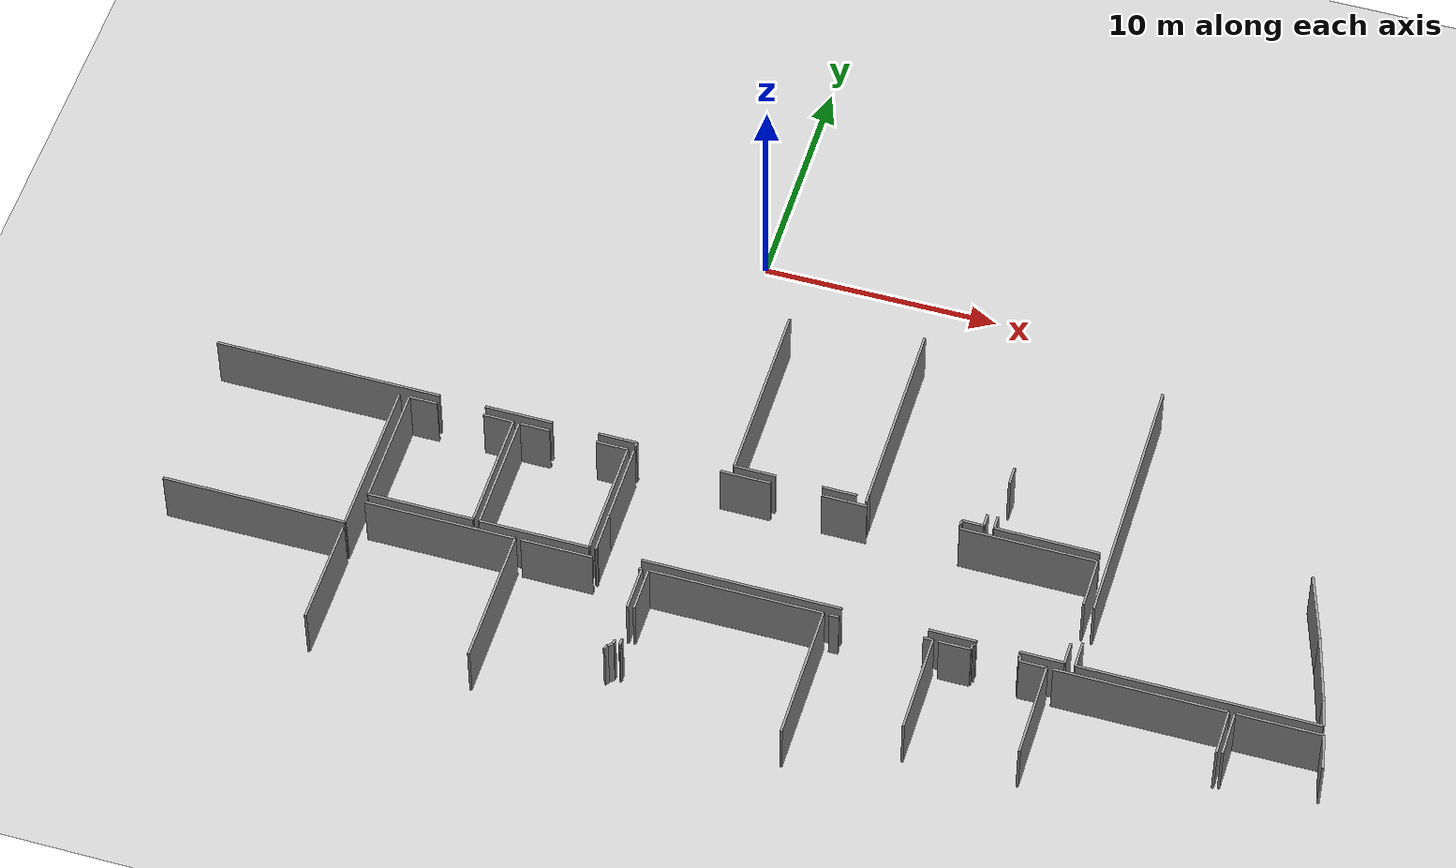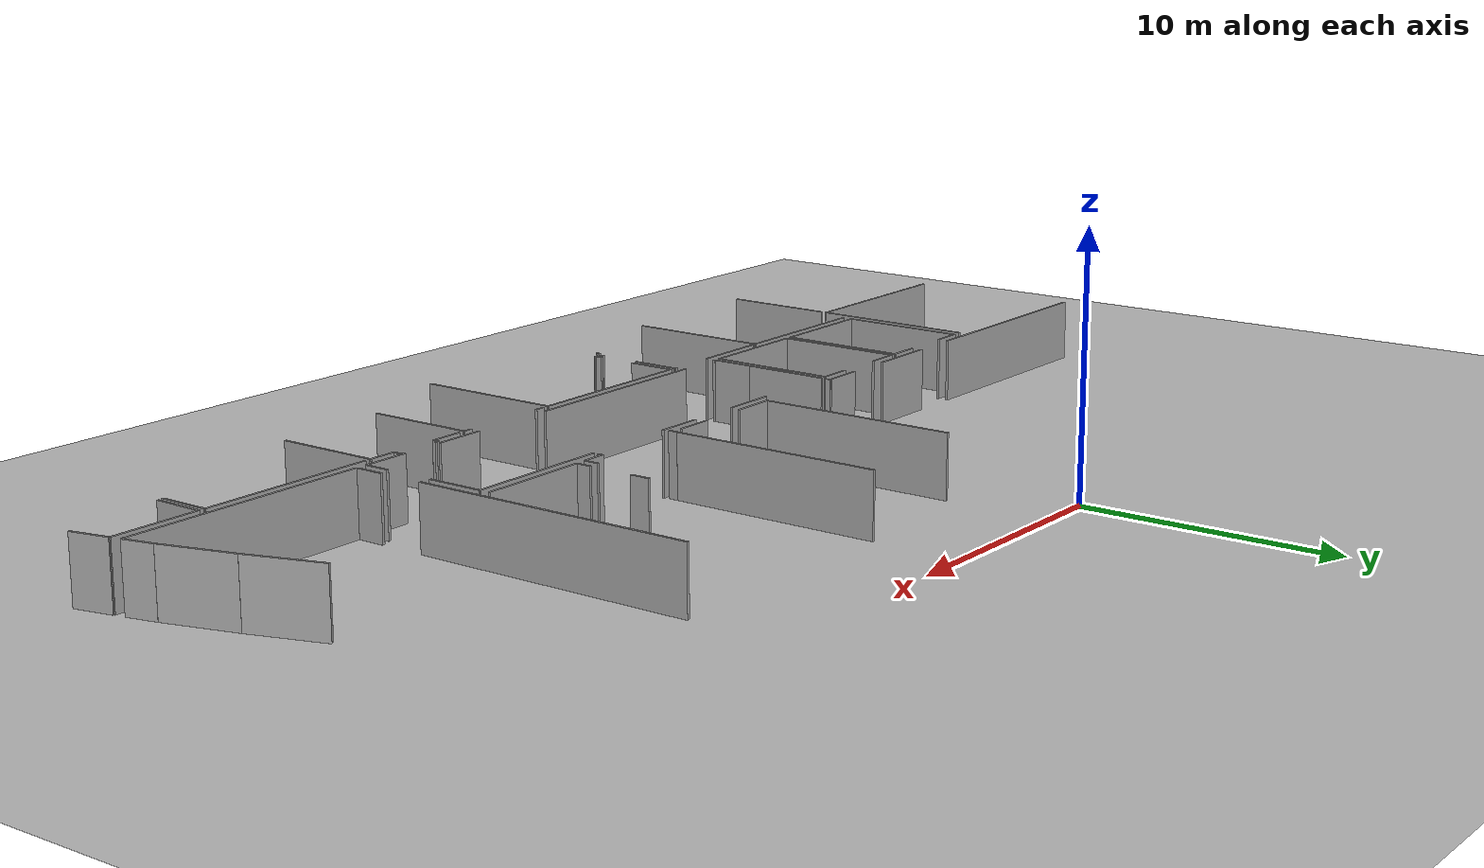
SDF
<sdf version="1.6">
 <world name="default">
  <model name="ground_plane">
   <static>1</static>
   <link name="link">
    <collision name="collision">
     <geometry><plane><normal>0 0 1</normal><size>100 100</size></plane></geometry>
     <surface><friction><ode><mu>100</mu><mu2>50</mu2></ode></friction></surface>
    </collision>
    <visual name="visual">
     <cast_shadows>0</cast_shadows>
     <geometry><plane><normal>0 0 1</normal><size>100 100</size></plane></geometry>
     <material>
      <script><uri>file://media/materials/scripts/gazebo.material</uri><name>Gazebo/Grey</name></script>
     </material>
    </visual>
   </link>
  </model>
  <model name="50041192">
   <static>1</static>
   <link name="Wall_64">
    <collision name="Wall_64_Collision">
     <geometry><box><size>0.18997877829 0.1 2.5</size></box></geometry>
     <pose>0.0949893891452 0 1.25 0 0 0</pose>
    </collision>
    <visual name="Wall_64_Visual">
     <pose>0.0949893891452 0 1.25 0 0 0</pose>
     <geometry><box><size>0.18997877829 0.1 2.5</size></box></geometry>
     <material>
      <script><uri>file://media/materials/scripts/gazebo.material</uri><name>Gazebo/Grey</name></script>
      <ambient>1 1 1 1</ambient>
     </material>
    </visual>
    <pose>27.8658838779 -46.1631784276 0 0 0 1.57079632679</pose>
   </link>
   <link name="Wall_65">
    <collision name="Wall_65_Collision">
     <geometry><box><size>1.62060157829 0.1 2.5</size></box></geometry>
     <pose>0.810300789143 0 1.25 0 0 0</pose>
    </collision>
    <visual name="Wall_65_Visual">
     <pose>0.810300789143 0 1.25 0 0 0</pose>
     <geometry><box><size>1.62060157829 0.1 2.5</size></box></geometry>
     <material>
      <script><uri>file://media/materials/scripts/gazebo.material</uri><name>Gazebo/Grey</name></script>
      <ambient>1 1 1 1</ambient>
     </material>
    </visual>
    <pose>27.8658838779 -45.9731996493 0 0 0 3.14159265359</pose>
   </link>
   <link name="Wall_66">
    <collision name="Wall_66_Collision">
     <geometry><box><size>2.86683694865 0.1 2.5</size></box></geometry>
     <pose>1.43341847432 0 1.25 0 0 0</pose>
    </collision>
    <visual name="Wall_66_Visual">
     <pose>1.43341847432 0 1.25 0 0 0</pose>
     <geometry><box><size>2.86683694865 0.1 2.5</size></box></geometry>
     <material>
      <script><uri>file://media/materials/scripts/gazebo.material</uri><name>Gazebo/Grey</name></script>
      <ambient>1 1 1 1</ambient>
     </material>
    </visual>
    <pose>24.2817023115 -45.9731996493 0 0 0 3.14159265359</pose>
   </link>
   <link name="Wall_67">
    <collision name="Wall_67_Collision">
     <geometry><box><size>9.63656233718 0.1 2.5</size></box></geometry>
     <pose>4.81828116859 0 1.25 0 0 0</pose>
    </collision>
    <visual name="Wall_67_Visual">
     <pose>4.81828116859 0 1.25 0 0 0</pose>
     <geometry><box><size>9.63656233718 0.1 2.5</size></box></geometry>
     <material>
      <script><uri>file://media/materials/scripts/gazebo.material</uri><name>Gazebo/Grey</name></script>
      <ambient>1 1 1 1</ambient>
     </material>
    </visual>
    <pose>19.4603077783 -45.9731996493 0 0 0 3.14159265359</pose>
   </link>
   <link name="Wall_108">
    <collision name="Wall_108_Collision">
     <geometry><box><size>7.90820022111 0.1 2.5</size></box></geometry>
     <pose>3.95410011056 0 1.25 0 0 0</pose>
    </collision>
    <visual name="Wall_108_Visual">
     <pose>3.95410011056 0 1.25 0 0 0</pose>
     <geometry><box><size>7.90820022111 0.1 2.5</size></box></geometry>
     <material>
      <script><uri>file://media/materials/scripts/gazebo.material</uri><name>Gazebo/Grey</name></script>
      <ambient>1 1 1 1</ambient>
     </material>
    </visual>
    <pose>31.9872161437 -45.966845844 0 0 0 1.57079632679</pose>
   </link>
   <link name="Wall_112">
    <collision name="Wall_112_Collision">
     <geometry><box><size>1.45031959641 0.1 2.5</size></box></geometry>
     <pose>0.725159798203 0 1.25 0 0 0</pose>
    </collision>
    <visual name="Wall_112_Visual">
     <pose>0.725159798203 0 1.25 0 0 0</pose>
     <geometry><box><size>1.45031959641 0.1 2.5</size></box></geometry>
     <material>
      <script><uri>file://media/materials/scripts/gazebo.material</uri><name>Gazebo/Grey</name></script>
      <ambient>1 1 1 1</ambient>
     </material>
    </visual>
    <pose>37.1369753345 -45.9664646157 0 0 0 3.14159265359</pose>
   </link>
   <link name="Wall_113">
    <collision name="Wall_113_Collision">
     <geometry><box><size>1.74920263898 0.1 2.5</size></box></geometry>
     <pose>0.874601319489 0 1.25 0 0 0</pose>
    </collision>
    <visual name="Wall_113_Visual">
     <pose>0.874601319489 0 1.25 0 0 0</pose>
     <geometry><box><size>1.74920263898 0.1 2.5</size></box></geometry>
     <material>
      <script><uri>file://media/materials/scripts/gazebo.material</uri><name>Gazebo/Grey</name></script>
      <ambient>1 1 1 1</ambient>
     </material>
    </visual>
    <pose>33.7364187412 -45.9664646157 0 0 0 -3.14137470953</pose>
   </link>
   <link name="Wall_114">
    <collision name="Wall_114_Collision">
     <geometry><box><size>8.35512688549 0.1 2.5</size></box></geometry>
     <pose>4.17756344275 0 1.25 0 0 0</pose>
    </collision>
    <visual name="Wall_114_Visual">
     <pose>4.17756344275 0 1.25 0 0 0</pose>
     <geometry><box><size>8.35512688549 0.1 2.5</size></box></geometry>
     <material>
      <script><uri>file://media/materials/scripts/gazebo.material</uri><name>Gazebo/Grey</name></script>
      <ambient>1 1 1 1</ambient>
     </material>
    </visual>
    <pose>37.5865705971 -45.7853811648 0 0 0 1.57079632679</pose>
   </link>
   <link name="Wall_122">
    <collision name="Wall_122_Collision">
     <geometry><box><size>0.576035987953 0.1 2.5</size></box></geometry>
     <pose>0.288017993977 0 1.25 0 0 0</pose>
    </collision>
    <visual name="Wall_122_Visual">
     <pose>0.288017993977 0 1.25 0 0 0</pose>
     <geometry><box><size>0.576035987953 0.1 2.5</size></box></geometry>
     <material>
      <script><uri>file://media/materials/scripts/gazebo.material</uri><name>Gazebo/Grey</name></script>
      <ambient>1 1 1 1</ambient>
     </material>
    </visual>
    <pose>42.4319825143 -45.3936055304 0 0 0 -1.57079632679</pose>
   </link>
   <link name="Wall_123">
    <collision name="Wall_123_Collision">
     <geometry><box><size>0.915202114546 0.1 2.5</size></box></geometry>
     <pose>0.457601057273 0 1.25 0 0 0</pose>
    </collision>
    <visual name="Wall_123_Visual">
     <pose>0.457601057273 0 1.25 0 0 0</pose>
     <geometry><box><size>0.915202114546 0.1 2.5</size></box></geometry>
     <material>
      <script><uri>file://media/materials/scripts/gazebo.material</uri><name>Gazebo/Grey</name></script>
      <ambient>1 1 1 1</ambient>
     </material>
    </visual>
    <pose>42.4319825143 -45.9696415183 0 0 0 3.14159265359</pose>
   </link>
   <link name="Wall_124">
    <collision name="Wall_124_Collision">
     <geometry><box><size>0.199890714549 0.1 2.5</size></box></geometry>
     <pose>0.0999453572745 0 1.25 0 0 0</pose>
    </collision>
    <visual name="Wall_124_Visual">
     <pose>0.0999453572745 0 1.25 0 0 0</pose>
     <geometry><box><size>0.199890714549 0.1 2.5</size></box></geometry>
     <material>
      <script><uri>file://media/materials/scripts/gazebo.material</uri><name>Gazebo/Grey</name></script>
      <ambient>1 1 1 1</ambient>
     </material>
    </visual>
    <pose>41.5167803998 -45.9696415183 0 0 0 -1.57079632679</pose>
   </link>
   <link name="Wall_125">
    <collision name="Wall_125_Collision">
     <geometry><box><size>0.384186398063 0.1 2.5</size></box></geometry>
     <pose>0.192093199032 0 1.25 0 0 0</pose>
    </collision>
    <visual name="Wall_125_Visual">
     <pose>0.192093199032 0 1.25 0 0 0</pose>
     <geometry><box><size>0.384186398063 0.1 2.5</size></box></geometry>
     <material>
      <script><uri>file://media/materials/scripts/gazebo.material</uri><name>Gazebo/Grey</name></script>
      <ambient>1 1 1 1</ambient>
     </material>
    </visual>
    <pose>37.5813604768 -46.1695322329 0 0 0 1.55723447223</pose>
   </link>
   <link name="Wall_128">
    <collision name="Wall_128_Collision">
     <geometry><box><size>4.37523032544 0.1 2.5</size></box></geometry>
     <pose>2.18761516272 0 1.25 0 0 0</pose>
    </collision>
    <visual name="Wall_128_Visual">
     <pose>2.18761516272 0 1.25 0 0 0</pose>
     <geometry><box><size>4.37523032544 0.1 2.5</size></box></geometry>
     <material>
      <script><uri>file://media/materials/scripts/gazebo.material</uri><name>Gazebo/Grey</name></script>
      <ambient>1 1 1 1</ambient>
     </material>
    </visual>
    <pose>47.2369842299 -45.9653209307 0 0 0 3.14159265359</pose>
   </link>
   <link name="Wall_129">
    <collision name="Wall_129_Collision">
     <geometry><box><size>0.598274306482 0.1 2.5</size></box></geometry>
     <pose>0.299137153241 0 1.25 0 0 0</pose>
    </collision>
    <visual name="Wall_129_Visual">
     <pose>0.299137153241 0 1.25 0 0 0</pose>
     <geometry><box><size>0.598274306482 0.1 2.5</size></box></geometry>
     <material>
      <script><uri>file://media/materials/scripts/gazebo.material</uri><name>Gazebo/Grey</name></script>
      <ambient>1 1 1 1</ambient>
     </material>
    </visual>
    <pose>42.8617539044 -45.9653209307 0 0 0 1.57079632679</pose>
   </link>
   <link name="Wall_130">
    <collision name="Wall_130_Collision">
     <geometry><box><size>0.784313735785 0.1 2.5</size></box></geometry>
     <pose>0.392156867892 0 1.25 0 0 0</pose>
    </collision>
    <visual name="Wall_130_Visual">
     <pose>0.392156867892 0 1.25 0 0 0</pose>
     <geometry><box><size>0.784313735785 0.1 2.5</size></box></geometry>
     <material>
      <script><uri>file://media/materials/scripts/gazebo.material</uri><name>Gazebo/Grey</name></script>
      <ambient>1 1 1 1</ambient>
     </material>
    </visual>
    <pose>42.8617539044 -43.6179711029 0 0 0 1.57095834883</pose>
   </link>
   <link name="Wall_133">
    <collision name="Wall_133_Collision">
     <geometry><box><size>3.01227094083 0.1 2.5</size></box></geometry>
     <pose>1.50613547041 0 1.25 0 0 0</pose>
    </collision>
    <visual name="Wall_133_Visual">
     <pose>1.50613547041 0 1.25 0 0 0</pose>
     <geometry><box><size>3.01227094083 0.1 2.5</size></box></geometry>
     <material>
      <script><uri>file://media/materials/scripts/gazebo.material</uri><name>Gazebo/Grey</name></script>
      <ambient>1 1 1 1</ambient>
     </material>
    </visual>
    <pose>55.6410354161 -44.667111433 0 0 0 -1.25064662482</pose>
   </link>
   <link name="Wall_134">
    <collision name="Wall_134_Collision">
     <geometry><box><size>2.93746454916 0.1 2.5</size></box></geometry>
     <pose>1.46873227458 0 1.25 0 0 0</pose>
    </collision>
    <visual name="Wall_134_Visual">
     <pose>1.46873227458 0 1.25 0 0 0</pose>
     <geometry><box><size>2.93746454916 0.1 2.5</size></box></geometry>
     <material>
      <script><uri>file://media/materials/scripts/gazebo.material</uri><name>Gazebo/Grey</name></script>
      <ambient>1 1 1 1</ambient>
     </material>
    </visual>
    <pose>56.589023166 -47.5263238153 0 0 0 -1.29008409856</pose>
   </link>
   <link name="Wall_135">
    <collision name="Wall_135_Collision">
     <geometry><box><size>1.22493164507 0.1 2.5</size></box></geometry>
     <pose>0.612465822537 0 1.25 0 0 0</pose>
    </collision>
    <visual name="Wall_135_Visual">
     <pose>0.612465822537 0 1.25 0 0 0</pose>
     <geometry><box><size>1.22493164507 0.1 2.5</size></box></geometry>
     <material>
      <script><uri>file://media/materials/scripts/gazebo.material</uri><name>Gazebo/Grey</name></script>
      <ambient>1 1 1 1</ambient>
     </material>
    </visual>
    <pose>57.402818548 -50.348811203 0 0 0 -1.34330543733</pose>
   </link>
   <link name="Wall_136">
    <collision name="Wall_136_Collision">
     <geometry><box><size>10.0033039788 0.1 2.5</size></box></geometry>
     <pose>5.00165198938 0 1.25 0 0 0</pose>
    </collision>
    <visual name="Wall_136_Visual">
     <pose>5.00165198938 0 1.25 0 0 0</pose>
     <geometry><box><size>10.0033039788 0.1 2.5</size></box></geometry>
     <material>
      <script><uri>file://media/materials/scripts/gazebo.material</uri><name>Gazebo/Grey</name></script>
      <ambient>1 1 1 1</ambient>
     </material>
    </visual>
    <pose>57.6790820022 -51.5421829133 0 0 0 3.14159265359</pose>
   </link>
   <link name="Wall_137">
    <collision name="Wall_137_Collision">
     <geometry><box><size>1.14279542018 0.1 2.5</size></box></geometry>
     <pose>0.571397710089 0 1.25 0 0 0</pose>
    </collision>
    <visual name="Wall_137_Visual">
     <pose>0.571397710089 0 1.25 0 0 0</pose>
     <geometry><box><size>1.14279542018 0.1 2.5</size></box></geometry>
     <material>
      <script><uri>file://media/materials/scripts/gazebo.material</uri><name>Gazebo/Grey</name></script>
      <ambient>1 1 1 1</ambient>
     </material>
    </visual>
    <pose>47.6757780235 -51.5421829133 0 0 0 1.57079632679</pose>
   </link>
   <link name="Wall_138">
    <collision name="Wall_138_Collision">
     <geometry><box><size>11.1852388395 0.1 2.5</size></box></geometry>
     <pose>5.59261941977 0 1.25 0 0 0</pose>
    </collision>
    <visual name="Wall_138_Visual">
     <pose>5.59261941977 0 1.25 0 0 0</pose>
     <geometry><box><size>11.1852388395 0.1 2.5</size></box></geometry>
     <material>
      <script><uri>file://media/materials/scripts/gazebo.material</uri><name>Gazebo/Grey</name></script>
      <ambient>1 1 1 1</ambient>
     </material>
    </visual>
    <pose>47.6757780235 -48.6462455365 0 0 0 1.57079632679</pose>
   </link>
   <link name="Wall_143">
    <collision name="Wall_143_Collision">
     <geometry><box><size>5.15992527925 0.1 2.5</size></box></geometry>
     <pose>2.57996263962 0 1.25 0 0 0</pose>
    </collision>
    <visual name="Wall_143_Visual">
     <pose>2.57996263962 0 1.25 0 0 0</pose>
     <geometry><box><size>5.15992527925 0.1 2.5</size></box></geometry>
     <material>
      <script><uri>file://media/materials/scripts/gazebo.material</uri><name>Gazebo/Grey</name></script>
      <ambient>1 1 1 1</ambient>
     </material>
    </visual>
    <pose>18.2823122768 -51.5439619788 0 0 0 1.57079632679</pose>
   </link>
   <link name="Wall_144">
    <collision name="Wall_144_Collision">
     <geometry><box><size>1.20735008196 0.1 2.5</size></box></geometry>
     <pose>0.603675040982 0 1.25 0 0 0</pose>
    </collision>
    <visual name="Wall_144_Visual">
     <pose>0.603675040982 0 1.25 0 0 0</pose>
     <geometry><box><size>1.20735008196 0.1 2.5</size></box></geometry>
     <material>
      <script><uri>file://media/materials/scripts/gazebo.material</uri><name>Gazebo/Grey</name></script>
      <ambient>1 1 1 1</ambient>
     </material>
    </visual>
    <pose>18.2823122768 -46.3840366996 0 0 0 0.0</pose>
   </link>
   <link name="Wall_145">
    <collision name="Wall_145_Collision">
     <geometry><box><size>1.26351772076 0.1 2.5</size></box></geometry>
     <pose>0.631758860381 0 1.25 0 0 0</pose>
    </collision>
    <visual name="Wall_145_Visual">
     <pose>0.631758860381 0 1.25 0 0 0</pose>
     <geometry><box><size>1.26351772076 0.1 2.5</size></box></geometry>
     <material>
      <script><uri>file://media/materials/scripts/gazebo.material</uri><name>Gazebo/Grey</name></script>
      <ambient>1 1 1 1</ambient>
     </material>
    </visual>
    <pose>21.4674748707 -46.3840366996 0 0 0 0.0</pose>
   </link>
   <link name="Wall_146">
    <collision name="Wall_146_Collision">
     <geometry><box><size>5.15433393059 0.1 2.5</size></box></geometry>
     <pose>2.5771669653 0 1.25 0 0 0</pose>
    </collision>
    <visual name="Wall_146_Visual">
     <pose>2.5771669653 0 1.25 0 0 0</pose>
     <geometry><box><size>5.15433393059 0.1 2.5</size></box></geometry>
     <material>
      <script><uri>file://media/materials/scripts/gazebo.material</uri><name>Gazebo/Grey</name></script>
      <ambient>1 1 1 1</ambient>
     </material>
    </visual>
    <pose>22.7309925915 -46.3840366996 0 0 0 -1.57079632679</pose>
   </link>
   <link name="Wall_147">
    <collision name="Wall_147_Collision">
     <geometry><box><size>4.4486838284 0.1 2.5</size></box></geometry>
     <pose>2.2243419142 0 1.25 0 0 0</pose>
    </collision>
    <visual name="Wall_147_Visual">
     <pose>2.2243419142 0 1.25 0 0 0</pose>
     <geometry><box><size>4.4486838284 0.1 2.5</size></box></geometry>
     <material>
      <script><uri>file://media/materials/scripts/gazebo.material</uri><name>Gazebo/Grey</name></script>
      <ambient>1 1 1 1</ambient>
     </material>
    </visual>
    <pose>22.7309925915 -51.5383706302 0 0 0 -3.14033579868</pose>
   </link>
   <link name="Wall_148">
    <collision name="Wall_148_Collision">
     <geometry><box><size>5.14251585274 0.1 2.5</size></box></geometry>
     <pose>2.57125792637 0 1.25 0 0 0</pose>
    </collision>
    <visual name="Wall_148_Visual">
     <pose>2.57125792637 0 1.25 0 0 0</pose>
     <geometry><box><size>5.14251585274 0.1 2.5</size></box></geometry>
     <material>
      <script><uri>file://media/materials/scripts/gazebo.material</uri><name>Gazebo/Grey</name></script>
      <ambient>1 1 1 1</ambient>
     </material>
    </visual>
    <pose>22.9887029342 -51.5350666514 0 0 0 1.57079632679</pose>
   </link>
   <link name="Wall_149">
    <collision name="Wall_149_Collision">
     <geometry><box><size>1.31206079321 0.1 2.5</size></box></geometry>
     <pose>0.656030396605 0 1.25 0 0 0</pose>
    </collision>
    <visual name="Wall_149_Visual">
     <pose>0.656030396605 0 1.25 0 0 0</pose>
     <geometry><box><size>1.31206079321 0.1 2.5</size></box></geometry>
     <material>
      <script><uri>file://media/materials/scripts/gazebo.material</uri><name>Gazebo/Grey</name></script>
      <ambient>1 1 1 1</ambient>
     </material>
    </visual>
    <pose>22.9887029342 -46.3925507987 0 0 0 0.0</pose>
   </link>
   <link name="Wall_150">
    <collision name="Wall_150_Collision">
     <geometry><box><size>1.33277419847 0.1 2.5</size></box></geometry>
     <pose>0.666387099234 0 1.25 0 0 0</pose>
    </collision>
    <visual name="Wall_150_Visual">
     <pose>0.666387099234 0 1.25 0 0 0</pose>
     <geometry><box><size>1.33277419847 0.1 2.5</size></box></geometry>
     <material>
      <script><uri>file://media/materials/scripts/gazebo.material</uri><name>Gazebo/Grey</name></script>
      <ambient>1 1 1 1</ambient>
     </material>
    </visual>
    <pose>26.2719682818 -46.3925507987 0 0 0 0.0</pose>
   </link>
   <link name="Wall_151">
    <collision name="Wall_151_Collision">
     <geometry><box><size>5.13794111293 0.1 2.5</size></box></geometry>
     <pose>2.56897055647 0 1.25 0 0 0</pose>
    </collision>
    <visual name="Wall_151_Visual">
     <pose>2.56897055647 0 1.25 0 0 0</pose>
     <geometry><box><size>5.13794111293 0.1 2.5</size></box></geometry>
     <material>
      <script><uri>file://media/materials/scripts/gazebo.material</uri><name>Gazebo/Grey</name></script>
      <ambient>1 1 1 1</ambient>
     </material>
    </visual>
    <pose>27.6047424803 -46.3925507987 0 0 0 -1.57079632679</pose>
   </link>
   <link name="Wall_152">
    <collision name="Wall_152_Collision">
     <geometry><box><size>4.61604181299 0.1 2.5</size></box></geometry>
     <pose>2.30802090649 0 1.25 0 0 0</pose>
    </collision>
    <visual name="Wall_152_Visual">
     <pose>2.30802090649 0 1.25 0 0 0</pose>
     <geometry><box><size>4.61604181299 0.1 2.5</size></box></geometry>
     <material>
      <script><uri>file://media/materials/scripts/gazebo.material</uri><name>Gazebo/Grey</name></script>
      <ambient>1 1 1 1</ambient>
     </material>
    </visual>
    <pose>27.6047424803 -51.5304919116 0 0 0 -3.14060160092</pose>
   </link>
   <link name="Wall_158">
    <collision name="Wall_158_Collision">
     <geometry><box><size>0.0613403879139 0.1 2.5</size></box></geometry>
     <pose>0.0306701939569 0 1.25 0 0 0</pose>
    </collision>
    <visual name="Wall_158_Visual">
     <pose>0.0306701939569 0 1.25 0 0 0</pose>
     <geometry><box><size>0.0613403879139 0.1 2.5</size></box></geometry>
     <material>
      <script><uri>file://media/materials/scripts/gazebo.material</uri><name>Gazebo/Grey</name></script>
      <ambient>1 1 1 1</ambient>
     </material>
    </visual>
    <pose>30.2644453763 -55.7444626587 0 0 0 2.65200091348</pose>
   </link>
   <link name="Wall_159">
    <collision name="Wall_159_Collision">
     <geometry><box><size>0.296214402806 0.1 2.5</size></box></geometry>
     <pose>0.148107201403 0 1.25 0 0 0</pose>
    </collision>
    <visual name="Wall_159_Visual">
     <pose>0.148107201403 0 1.25 0 0 0</pose>
     <geometry><box><size>0.296214402806 0.1 2.5</size></box></geometry>
     <material>
      <script><uri>file://media/materials/scripts/gazebo.material</uri><name>Gazebo/Grey</name></script>
      <ambient>1 1 1 1</ambient>
     </material>
    </visual>
    <pose>30.2103109552 -55.7156163827 0 0 0 1.57079632679</pose>
   </link>
   <link name="Wall_160">
    <collision name="Wall_160_Collision">
     <geometry><box><size>1.91846797047 0.1 2.5</size></box></geometry>
     <pose>0.959233985234 0 1.25 0 0 0</pose>
    </collision>
    <visual name="Wall_160_Visual">
     <pose>0.959233985234 0 1.25 0 0 0</pose>
     <geometry><box><size>1.91846797047 0.1 2.5</size></box></geometry>
     <material>
      <script><uri>file://media/materials/scripts/gazebo.material</uri><name>Gazebo/Grey</name></script>
      <ambient>1 1 1 1</ambient>
     </material>
    </visual>
    <pose>30.2103109552 -53.8556034209 0 0 0 1.57079632679</pose>
   </link>
   <link name="Wall_161">
    <collision name="Wall_161_Collision">
     <geometry><box><size>7.26036623334 0.1 2.5</size></box></geometry>
     <pose>3.63018311667 0 1.25 0 0 0</pose>
    </collision>
    <visual name="Wall_161_Visual">
     <pose>3.63018311667 0 1.25 0 0 0</pose>
     <geometry><box><size>7.26036623334 0.1 2.5</size></box></geometry>
     <material>
      <script><uri>file://media/materials/scripts/gazebo.material</uri><name>Gazebo/Grey</name></script>
      <ambient>1 1 1 1</ambient>
     </material>
    </visual>
    <pose>30.2103109552 -51.9371354504 0 0 0 0.0</pose>
   </link>
   <link name="Wall_162">
    <collision name="Wall_162_Collision">
     <geometry><box><size>5.91653641366 0.1 2.5</size></box></geometry>
     <pose>2.95826820683 0 1.25 0 0 0</pose>
    </collision>
    <visual name="Wall_162_Visual">
     <pose>2.95826820683 0 1.25 0 0 0</pose>
     <geometry><box><size>5.91653641366 0.1 2.5</size></box></geometry>
     <material>
      <script><uri>file://media/materials/scripts/gazebo.material</uri><name>Gazebo/Grey</name></script>
      <ambient>1 1 1 1</ambient>
     </material>
    </visual>
    <pose>37.4706771886 -51.9371354504 0 0 0 -1.57079632679</pose>
   </link>
   <link name="Wall_165">
    <collision name="Wall_165_Collision">
     <geometry><box><size>3.01017879608 0.1 2.5</size></box></geometry>
     <pose>1.50508939804 0 1.25 0 0 0</pose>
    </collision>
    <visual name="Wall_165_Visual">
     <pose>1.50508939804 0 1.25 0 0 0</pose>
     <geometry><box><size>3.01017879608 0.1 2.5</size></box></geometry>
     <material>
      <script><uri>file://media/materials/scripts/gazebo.material</uri><name>Gazebo/Grey</name></script>
      <ambient>1 1 1 1</ambient>
     </material>
    </visual>
    <pose>24.8673960835 -51.9492076805 0 0 0 0.0</pose>
   </link>
   <link name="Wall_166">
    <collision name="Wall_166_Collision">
     <geometry><box><size>0.125042888186 0.1 2.5</size></box></geometry>
     <pose>0.0625214440929 0 1.25 0 0 0</pose>
    </collision>
    <visual name="Wall_166_Visual">
     <pose>0.0625214440929 0 1.25 0 0 0</pose>
     <geometry><box><size>0.125042888186 0.1 2.5</size></box></geometry>
     <material>
      <script><uri>file://media/materials/scripts/gazebo.material</uri><name>Gazebo/Grey</name></script>
      <ambient>1 1 1 1</ambient>
     </material>
    </visual>
    <pose>29.8178999403 -51.9492076805 0 0 0 0.0</pose>
   </link>
   <link name="Wall_167">
    <collision name="Wall_167_Collision">
     <geometry><box><size>1.94121459342 0.1 2.5</size></box></geometry>
     <pose>0.97060729671 0 1.25 0 0 0</pose>
    </collision>
    <visual name="Wall_167_Visual">
     <pose>0.97060729671 0 1.25 0 0 0</pose>
     <geometry><box><size>1.94121459342 0.1 2.5</size></box></geometry>
     <material>
      <script><uri>file://media/materials/scripts/gazebo.material</uri><name>Gazebo/Grey</name></script>
      <ambient>1 1 1 1</ambient>
     </material>
    </visual>
    <pose>29.9429428285 -51.9492076805 0 0 0 -1.57079632679</pose>
   </link>
   <link name="Wall_168">
    <collision name="Wall_168_Collision">
     <geometry><box><size>0.199382410125 0.1 2.5</size></box></geometry>
     <pose>0.0996912050627 0 1.25 0 0 0</pose>
    </collision>
    <visual name="Wall_168_Visual">
     <pose>0.0996912050627 0 1.25 0 0 0</pose>
     <geometry><box><size>0.199382410125 0.1 2.5</size></box></geometry>
     <material>
      <script><uri>file://media/materials/scripts/gazebo.material</uri><name>Gazebo/Grey</name></script>
      <ambient>1 1 1 1</ambient>
     </material>
    </visual>
    <pose>29.9429428285 -55.5429199548 0 0 0 -1.57079632679</pose>
   </link>
   <link name="Wall_169">
    <collision name="Wall_169_Collision">
     <geometry><box><size>0.246214636417 0.1 2.5</size></box></geometry>
     <pose>0.123107318209 0 1.25 0 0 0</pose>
    </collision>
    <visual name="Wall_169_Visual">
     <pose>0.123107318209 0 1.25 0 0 0</pose>
     <geometry><box><size>0.246214636417 0.1 2.5</size></box></geometry>
     <material>
      <script><uri>file://media/materials/scripts/gazebo.material</uri><name>Gazebo/Grey</name></script>
      <ambient>1 1 1 1</ambient>
     </material>
    </visual>
    <pose>29.9429428285 -55.7423023649 0 0 0 -2.42815199779</pose>
   </link>
   <link name="Wall_170">
    <collision name="Wall_170_Collision">
     <geometry><box><size>0.200398051999 0.1 2.5</size></box></geometry>
     <pose>0.100199026 0 1.25 0 0 0</pose>
    </collision>
    <visual name="Wall_170_Visual">
     <pose>0.100199026 0 1.25 0 0 0</pose>
     <geometry><box><size>0.200398051999 0.1 2.5</size></box></geometry>
     <material>
      <script><uri>file://media/materials/scripts/gazebo.material</uri><name>Gazebo/Grey</name></script>
      <ambient>1 1 1 1</ambient>
     </material>
    </visual>
    <pose>29.7567763333 -55.9034348671 0 0 0 -2.02224941835</pose>
   </link>
   <link name="Wall_177">
    <collision name="Wall_177_Collision">
     <geometry><box><size>1.31854167461 0.1 2.5</size></box></geometry>
     <pose>0.659270837304 0 1.25 0 0 0</pose>
    </collision>
    <visual name="Wall_177_Visual">
     <pose>0.659270837304 0 1.25 0 0 0</pose>
     <geometry><box><size>1.31854167461 0.1 2.5</size></box></geometry>
     <material>
      <script><uri>file://media/materials/scripts/gazebo.material</uri><name>Gazebo/Grey</name></script>
      <ambient>1 1 1 1</ambient>
     </material>
    </visual>
    <pose>42.2174780476 -51.9551802575 0 0 0 0.0</pose>
   </link>
   <link name="Wall_178">
    <collision name="Wall_178_Collision">
     <geometry><box><size>0.245638112666 0.1 2.5</size></box></geometry>
     <pose>0.122819056333 0 1.25 0 0 0</pose>
    </collision>
    <visual name="Wall_178_Visual">
     <pose>0.122819056333 0 1.25 0 0 0</pose>
     <geometry><box><size>0.245638112666 0.1 2.5</size></box></geometry>
     <material>
      <script><uri>file://media/materials/scripts/gazebo.material</uri><name>Gazebo/Grey</name></script>
      <ambient>1 1 1 1</ambient>
     </material>
    </visual>
    <pose>43.5360197222 -51.9551802575 0 0 0 1.57079632679</pose>
   </link>
   <link name="Wall_179">
    <collision name="Wall_179_Collision">
     <geometry><box><size>0.12644072535 0.1 2.5</size></box></geometry>
     <pose>0.0632203626752 0 1.25 0 0 0</pose>
    </collision>
    <visual name="Wall_179_Visual">
     <pose>0.0632203626752 0 1.25 0 0 0</pose>
     <geometry><box><size>0.12644072535 0.1 2.5</size></box></geometry>
     <material>
      <script><uri>file://media/materials/scripts/gazebo.material</uri><name>Gazebo/Grey</name></script>
      <ambient>1 1 1 1</ambient>
     </material>
    </visual>
    <pose>43.5360197222 -51.7095421448 0 0 0 0.0</pose>
   </link>
   <link name="Wall_180">
    <collision name="Wall_180_Collision">
     <geometry><box><size>0.0982298298451 0.1 2.5</size></box></geometry>
     <pose>0.0491149149226 0 1.25 0 0 0</pose>
    </collision>
    <visual name="Wall_180_Visual">
     <pose>0.0491149149226 0 1.25 0 0 0</pose>
     <geometry><box><size>0.0982298298451 0.1 2.5</size></box></geometry>
     <material>
      <script><uri>file://media/materials/scripts/gazebo.material</uri><name>Gazebo/Grey</name></script>
      <ambient>1 1 1 1</ambient>
     </material>
    </visual>
    <pose>45.3995908149 -51.7095421448 0 0 0 0.0</pose>
   </link>
   <link name="Wall_181">
    <collision name="Wall_181_Collision">
     <geometry><box><size>0.241571677278 0.1 2.5</size></box></geometry>
     <pose>0.120785838639 0 1.25 0 0 0</pose>
    </collision>
    <visual name="Wall_181_Visual">
     <pose>0.120785838639 0 1.25 0 0 0</pose>
     <geometry><box><size>0.241571677278 0.1 2.5</size></box></geometry>
     <material>
      <script><uri>file://media/materials/scripts/gazebo.material</uri><name>Gazebo/Grey</name></script>
      <ambient>1 1 1 1</ambient>
     </material>
    </visual>
    <pose>45.4978206448 -51.7095421448 0 0 0 -1.57079632679</pose>
   </link>
   <link name="Wall_182">
    <collision name="Wall_182_Collision">
     <geometry><box><size>1.1172531229 0.1 2.5</size></box></geometry>
     <pose>0.558626561448 0 1.25 0 0 0</pose>
    </collision>
    <visual name="Wall_182_Visual">
     <pose>0.558626561448 0 1.25 0 0 0</pose>
     <geometry><box><size>1.1172531229 0.1 2.5</size></box></geometry>
     <material>
      <script><uri>file://media/materials/scripts/gazebo.material</uri><name>Gazebo/Grey</name></script>
      <ambient>1 1 1 1</ambient>
     </material>
    </visual>
    <pose>45.4978206448 -51.9511138221 0 0 0 0.0</pose>
   </link>
   <link name="Wall_183">
    <collision name="Wall_183_Collision">
     <geometry><box><size>4.15373667289 0.1 2.5</size></box></geometry>
     <pose>2.07686833645 0 1.25 0 0 0</pose>
    </collision>
    <visual name="Wall_183_Visual">
     <pose>2.07686833645 0 1.25 0 0 0</pose>
     <geometry><box><size>4.15373667289 0.1 2.5</size></box></geometry>
     <material>
      <script><uri>file://media/materials/scripts/gazebo.material</uri><name>Gazebo/Grey</name></script>
      <ambient>1 1 1 1</ambient>
     </material>
    </visual>
    <pose>46.6150737677 -51.9511138221 0 0 0 -1.57079632679</pose>
   </link>
   <link name="Wall_185">
    <collision name="Wall_185_Collision">
     <geometry><box><size>3.41059560571 0.1 2.5</size></box></geometry>
     <pose>1.70529780285 0 1.25 0 0 0</pose>
    </collision>
    <visual name="Wall_185_Visual">
     <pose>1.70529780285 0 1.25 0 0 0</pose>
     <geometry><box><size>3.41059560571 0.1 2.5</size></box></geometry>
     <material>
      <script><uri>file://media/materials/scripts/gazebo.material</uri><name>Gazebo/Grey</name></script>
      <ambient>1 1 1 1</ambient>
     </material>
    </visual>
    <pose>27.8695690849 -49.7842120646 0 0 0 1.57079632679</pose>
   </link>
   <link name="Wall_186">
    <collision name="Wall_186_Collision">
     <geometry><box><size>2.12954138233 0.1 2.5</size></box></geometry>
     <pose>1.06477069117 0 1.25 0 0 0</pose>
    </collision>
    <visual name="Wall_186_Visual">
     <pose>1.06477069117 0 1.25 0 0 0</pose>
     <geometry><box><size>2.12954138233 0.1 2.5</size></box></geometry>
     <material>
      <script><uri>file://media/materials/scripts/gazebo.material</uri><name>Gazebo/Grey</name></script>
      <ambient>1 1 1 1</ambient>
     </material>
    </visual>
    <pose>31.5221175962 -46.3736164589 0 0 0 0.0</pose>
   </link>
   <link name="Wall_187">
    <collision name="Wall_187_Collision">
     <geometry><box><size>1.89368812982 0.1 2.5</size></box></geometry>
     <pose>0.94684406491 0 1.25 0 0 0</pose>
    </collision>
    <visual name="Wall_187_Visual">
     <pose>0.94684406491 0 1.25 0 0 0</pose>
     <geometry><box><size>1.89368812982 0.1 2.5</size></box></geometry>
     <material>
      <script><uri>file://media/materials/scripts/gazebo.material</uri><name>Gazebo/Grey</name></script>
      <ambient>1 1 1 1</ambient>
     </material>
    </visual>
    <pose>35.7881895467 -46.3736164589 0 0 0 0.0</pose>
   </link>
   <link name="Wall_188">
    <collision name="Wall_188_Collision">
     <geometry><box><size>5.70444639294 0.1 2.5</size></box></geometry>
     <pose>2.85222319647 0 1.25 0 0 0</pose>
    </collision>
    <visual name="Wall_188_Visual">
     <pose>2.85222319647 0 1.25 0 0 0</pose>
     <geometry><box><size>5.70444639294 0.1 2.5</size></box></geometry>
     <material>
      <script><uri>file://media/materials/scripts/gazebo.material</uri><name>Gazebo/Grey</name></script>
      <ambient>1 1 1 1</ambient>
     </material>
    </visual>
    <pose>41.5297421626 -46.3736164589 0 0 0 0.0</pose>
   </link>
   <link name="Wall_189">
    <collision name="Wall_189_Collision">
     <geometry><box><size>2.21391991664 0.1 2.5</size></box></geometry>
     <pose>1.10695995832 0 1.25 0 0 0</pose>
    </collision>
    <visual name="Wall_189_Visual">
     <pose>1.10695995832 0 1.25 0 0 0</pose>
     <geometry><box><size>2.21391991664 0.1 2.5</size></box></geometry>
     <material>
      <script><uri>file://media/materials/scripts/gazebo.material</uri><name>Gazebo/Grey</name></script>
      <ambient>1 1 1 1</ambient>
     </material>
    </visual>
    <pose>47.2341885555 -46.3736164589 0 0 0 -1.57079632679</pose>
   </link>
   <link name="Wall_190">
    <collision name="Wall_190_Collision">
     <geometry><box><size>0.979883852439 0.1 2.5</size></box></geometry>
     <pose>0.48994192622 0 1.25 0 0 0</pose>
    </collision>
    <visual name="Wall_190_Visual">
     <pose>0.48994192622 0 1.25 0 0 0</pose>
     <geometry><box><size>0.979883852439 0.1 2.5</size></box></geometry>
     <material>
      <script><uri>file://media/materials/scripts/gazebo.material</uri><name>Gazebo/Grey</name></script>
      <ambient>1 1 1 1</ambient>
     </material>
    </visual>
    <pose>47.2341885555 -50.5484477654 0 0 0 -1.57079632679</pose>
   </link>
   <link name="Wall_191">
    <collision name="Wall_191_Collision">
     <geometry><box><size>1.84832196002 0.1 2.5</size></box></geometry>
     <pose>0.924160980011 0 1.25 0 0 0</pose>
    </collision>
    <visual name="Wall_191_Visual">
     <pose>0.924160980011 0 1.25 0 0 0</pose>
     <geometry><box><size>1.84832196002 0.1 2.5</size></box></geometry>
     <material>
      <script><uri>file://media/materials/scripts/gazebo.material</uri><name>Gazebo/Grey</name></script>
      <ambient>1 1 1 1</ambient>
     </material>
    </visual>
    <pose>47.2341885555 -51.5283316178 0 0 0 3.14159265359</pose>
   </link>
   <link name="Wall_192">
    <collision name="Wall_192_Collision">
     <geometry><box><size>1.97234823936 0.1 2.5</size></box></geometry>
     <pose>0.98617411968 0 1.25 0 0 0</pose>
    </collision>
    <visual name="Wall_192_Visual">
     <pose>0.98617411968 0 1.25 0 0 0</pose>
     <geometry><box><size>1.97234823936 0.1 2.5</size></box></geometry>
     <material>
      <script><uri>file://media/materials/scripts/gazebo.material</uri><name>Gazebo/Grey</name></script>
      <ambient>1 1 1 1</ambient>
     </material>
    </visual>
    <pose>43.6589023166 -51.5283316178 0 0 0 3.14159265359</pose>
   </link>
   <link name="Wall_193">
    <collision name="Wall_193_Collision">
     <geometry><box><size>8.31674990152 0.1 2.5</size></box></geometry>
     <pose>4.15837495076 0 1.25 0 0 0</pose>
    </collision>
    <visual name="Wall_193_Visual">
     <pose>4.15837495076 0 1.25 0 0 0</pose>
     <geometry><box><size>8.31674990152 0.1 2.5</size></box></geometry>
     <material>
      <script><uri>file://media/materials/scripts/gazebo.material</uri><name>Gazebo/Grey</name></script>
      <ambient>1 1 1 1</ambient>
     </material>
    </visual>
    <pose>38.1146988932 -51.5283316178 0 0 0 3.14159265359</pose>
   </link>
   <link name="Wall_194">
    <collision name="Wall_194_Collision">
     <geometry><box><size>0.0799308705984 0.1 2.5</size></box></geometry>
     <pose>0.0399654352992 0 1.25 0 0 0</pose>
    </collision>
    <visual name="Wall_194_Visual">
     <pose>0.0399654352992 0 1.25 0 0 0</pose>
     <geometry><box><size>0.0799308705984 0.1 2.5</size></box></geometry>
     <material>
      <script><uri>file://media/materials/scripts/gazebo.material</uri><name>Gazebo/Grey</name></script>
      <ambient>1 1 1 1</ambient>
     </material>
    </visual>
    <pose>27.9569974458 -51.5283316178 0 0 0 3.14159265359</pose>
   </link>
   <link name="Wall_195">
    <collision name="Wall_195_Collision">
     <geometry><box><size>1.74413566795 0.1 2.5</size></box></geometry>
     <pose>0.872067833975 0 1.25 0 0 0</pose>
    </collision>
    <visual name="Wall_195_Visual">
     <pose>0.872067833975 0 1.25 0 0 0</pose>
     <geometry><box><size>1.74413566795 0.1 2.5</size></box></geometry>
     <material>
      <script><uri>file://media/materials/scripts/gazebo.material</uri><name>Gazebo/Grey</name></script>
      <ambient>1 1 1 1</ambient>
     </material>
    </visual>
    <pose>27.8770665752 -51.5283316178 0 0 0 1.57509502527</pose>
   </link>
   <link name="Wall_196">
    <collision name="Wall_196_Collision">
     <geometry><box><size>3.56308693276 0.1 2.5</size></box></geometry>
     <pose>1.78154346638 0 1.25 0 0 0</pose>
    </collision>
    <visual name="Wall_196_Visual">
     <pose>1.78154346638 0 1.25 0 0 0</pose>
     <geometry><box><size>3.56308693276 0.1 2.5</size></box></geometry>
     <material>
      <script><uri>file://media/materials/scripts/gazebo.material</uri><name>Gazebo/Grey</name></script>
      <ambient>1 1 1 1</ambient>
     </material>
    </visual>
    <pose>54.2221036179 -51.9565780946 0 0 0 0.0</pose>
   </link>
   <link name="Wall_197">
    <collision name="Wall_197_Collision">
     <geometry><box><size>1.5532558582 0.1 2.5</size></box></geometry>
     <pose>0.776627929098 0 1.25 0 0 0</pose>
    </collision>
    <visual name="Wall_197_Visual">
     <pose>0.776627929098 0 1.25 0 0 0</pose>
     <geometry><box><size>1.5532558582 0.1 2.5</size></box></geometry>
     <material>
      <script><uri>file://media/materials/scripts/gazebo.material</uri><name>Gazebo/Grey</name></script>
      <ambient>1 1 1 1</ambient>
     </material>
    </visual>
    <pose>57.7851905506 -51.9565780946 0 0 0 -1.36138292479</pose>
   </link>
   <link name="Wall_201">
    <collision name="Wall_201_Collision">
     <geometry><box><size>1.96731760173 0.1 2.5</size></box></geometry>
     <pose>0.983658800863 0 1.25 0 0 0</pose>
    </collision>
    <visual name="Wall_201_Visual">
     <pose>0.983658800863 0 1.25 0 0 0</pose>
     <geometry><box><size>1.96731760173 0.1 2.5</size></box></geometry>
     <material>
      <script><uri>file://media/materials/scripts/gazebo.material</uri><name>Gazebo/Grey</name></script>
      <ambient>1 1 1 1</ambient>
     </material>
    </visual>
    <pose>54.2077440179 -53.9238432897 0 0 0 1.56349718635</pose>
   </link>
   <link name="Wall_235">
    <collision name="Wall_235_Collision">
     <geometry><box><size>7.09910665498 0.1 2.5</size></box></geometry>
     <pose>3.54955332749 0 1.25 0 0 0</pose>
    </collision>
    <visual name="Wall_235_Visual">
     <pose>3.54955332749 0 1.25 0 0 0</pose>
     <geometry><box><size>7.09910665498 0.1 2.5</size></box></geometry>
     <material>
      <script><uri>file://media/materials/scripts/gazebo.material</uri><name>Gazebo/Grey</name></script>
      <ambient>1 1 1 1</ambient>
     </material>
    </visual>
    <pose>46.8759610131 -51.9555614858 0 0 0 0.0</pose>
   </link>
   <link name="Wall_236">
    <collision name="Wall_236_Collision">
     <geometry><box><size>1.99763638443 0.1 2.5</size></box></geometry>
     <pose>0.998818192215 0 1.25 0 0 0</pose>
    </collision>
    <visual name="Wall_236_Visual">
     <pose>0.998818192215 0 1.25 0 0 0</pose>
     <geometry><box><size>1.99763638443 0.1 2.5</size></box></geometry>
     <material>
      <script><uri>file://media/materials/scripts/gazebo.material</uri><name>Gazebo/Grey</name></script>
      <ambient>1 1 1 1</ambient>
     </material>
    </visual>
    <pose>53.975067668 -51.9555614858 0 0 0 -1.57079632679</pose>
   </link>
   <link name="Wall_298">
    <collision name="Wall_298_Collision">
     <geometry><box><size>6.34402043384 0.1 2.5</size></box></geometry>
     <pose>3.17201021692 0 1.25 0 0 0</pose>
    </collision>
    <visual name="Wall_298_Visual">
     <pose>3.17201021692 0 1.25 0 0 0</pose>
     <geometry><box><size>6.34402043384 0.1 2.5</size></box></geometry>
     <material>
      <script><uri>file://media/materials/scripts/gazebo.material</uri><name>Gazebo/Grey</name></script>
      <ambient>1 1 1 1</ambient>
     </material>
    </visual>
    <pose>18.28612456 -51.9547990291 0 0 0 0.0</pose>
   </link>
   <link name="Wall_299">
    <collision name="Wall_299_Collision">
     <geometry><box><size>5.89290025796 0.1 2.5</size></box></geometry>
     <pose>2.94645012898 0 1.25 0 0 0</pose>
    </collision>
    <visual name="Wall_299_Visual">
     <pose>2.94645012898 0 1.25 0 0 0</pose>
     <geometry><box><size>5.89290025796 0.1 2.5</size></box></geometry>
     <material>
      <script><uri>file://media/materials/scripts/gazebo.material</uri><name>Gazebo/Grey</name></script>
      <ambient>1 1 1 1</ambient>
     </material>
    </visual>
    <pose>24.6301449938 -51.9547990291 0 0 0 -1.57079632679</pose>
   </link>
   <link name="Wall_304">
    <collision name="Wall_304_Collision">
     <geometry><box><size>0.411345354733 0.1 2.5</size></box></geometry>
     <pose>0.205672677366 0 1.25 0 0 0</pose>
    </collision>
    <visual name="Wall_304_Visual">
     <pose>0.205672677366 0 1.25 0 0 0</pose>
     <geometry><box><size>0.411345354733 0.1 2.5</size></box></geometry>
     <material>
      <script><uri>file://media/materials/scripts/gazebo.material</uri><name>Gazebo/Grey</name></script>
      <ambient>1 1 1 1</ambient>
     </material>
    </visual>
    <pose>37.7121217897 -51.9518762787 0 0 0 0.0</pose>
   </link>
   <link name="Wall_305">
    <collision name="Wall_305_Collision">
     <geometry><box><size>0.390504873369 0.1 2.5</size></box></geometry>
     <pose>0.195252436684 0 1.25 0 0 0</pose>
    </collision>
    <visual name="Wall_305_Visual">
     <pose>0.195252436684 0 1.25 0 0 0</pose>
     <geometry><box><size>0.390504873369 0.1 2.5</size></box></geometry>
     <material>
      <script><uri>file://media/materials/scripts/gazebo.material</uri><name>Gazebo/Grey</name></script>
      <ambient>1 1 1 1</ambient>
     </material>
    </visual>
    <pose>41.5810809094 -51.9518762787 0 0 0 0.0</pose>
   </link>
   <link name="Wall_306">
    <collision name="Wall_306_Collision">
     <geometry><box><size>4.30559261942 0.1 2.5</size></box></geometry>
     <pose>2.15279630971 0 1.25 0 0 0</pose>
    </collision>
    <visual name="Wall_306_Visual">
     <pose>2.15279630971 0 1.25 0 0 0</pose>
     <geometry><box><size>4.30559261942 0.1 2.5</size></box></geometry>
     <material>
      <script><uri>file://media/materials/scripts/gazebo.material</uri><name>Gazebo/Grey</name></script>
      <ambient>1 1 1 1</ambient>
     </material>
    </visual>
    <pose>41.9715857827 -51.9518762787 0 0 0 -1.57079632679</pose>
   </link>
   <link name="Wall_330">
    <collision name="Wall_330_Collision">
     <geometry><box><size>6.75066397265 0.1 2.5</size></box></geometry>
     <pose>3.37533198633 0 1.25 0 0 0</pose>
    </collision>
    <visual name="Wall_330_Visual">
     <pose>3.37533198633 0 1.25 0 0 0</pose>
     <geometry><box><size>6.75066397265 0.1 2.5</size></box></geometry>
     <material>
      <script><uri>file://media/materials/scripts/gazebo.material</uri><name>Gazebo/Grey</name></script>
      <ambient>1 1 1 1</ambient>
     </material>
    </visual>
    <pose>17.8526679628 -46.3958547774 0 0 0 -1.57079632679</pose>
   </link>
   <link name="Wall_331">
    <collision name="Wall_331_Collision">
     <geometry><box><size>7.75304029583 0.1 2.5</size></box></geometry>
     <pose>3.87652014792 0 1.25 0 0 0</pose>
    </collision>
    <visual name="Wall_331_Visual">
     <pose>3.87652014792 0 1.25 0 0 0</pose>
     <geometry><box><size>7.75304029583 0.1 2.5</size></box></geometry>
     <material>
      <script><uri>file://media/materials/scripts/gazebo.material</uri><name>Gazebo/Grey</name></script>
      <ambient>1 1 1 1</ambient>
     </material>
    </visual>
    <pose>17.8526679628 -53.1465187501 0 0 0 3.14159265359</pose>
   </link>
   <link name="Wall_344">
    <collision name="Wall_344_Collision">
     <geometry><box><size>4.56139682056 0.1 2.5</size></box></geometry>
     <pose>2.28069841028 0 1.25 0 0 0</pose>
    </collision>
    <visual name="Wall_344_Visual">
     <pose>2.28069841028 0 1.25 0 0 0</pose>
     <geometry><box><size>4.56139682056 0.1 2.5</size></box></geometry>
     <material>
      <script><uri>file://media/materials/scripts/gazebo.material</uri><name>Gazebo/Grey</name></script>
      <ambient>1 1 1 1</ambient>
     </material>
    </visual>
    <pose>17.8580051593 -53.3878362751 0 0 0 -1.57079632679</pose>
   </link>
   <pose>-29.75 33.9121859632 0 0 0 0</pose>
  </model>
 </world>
</sdf>
